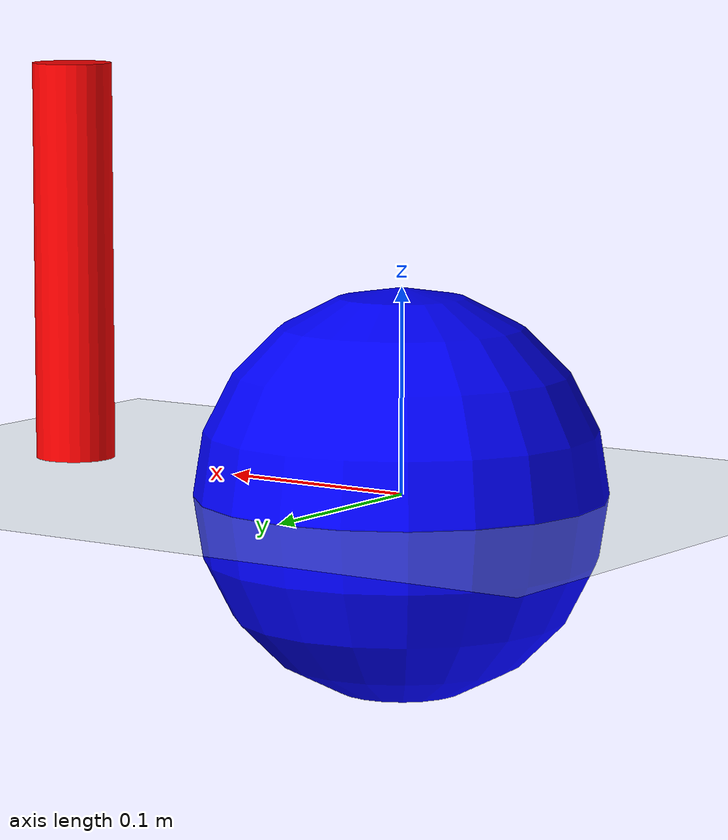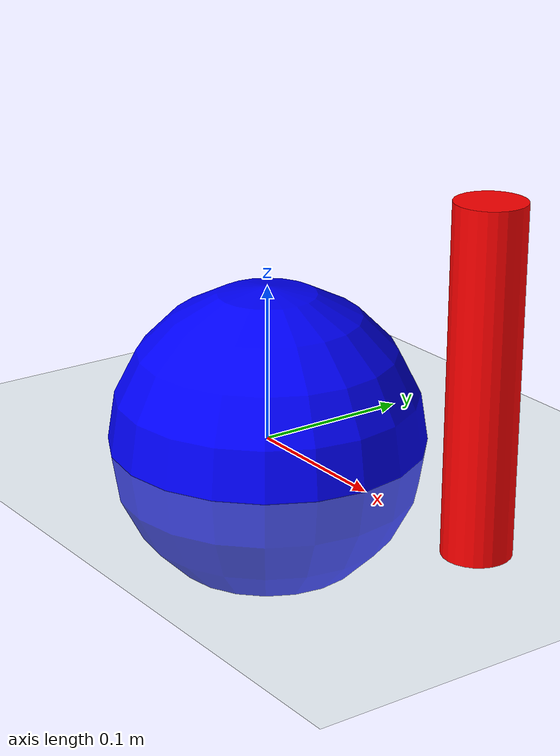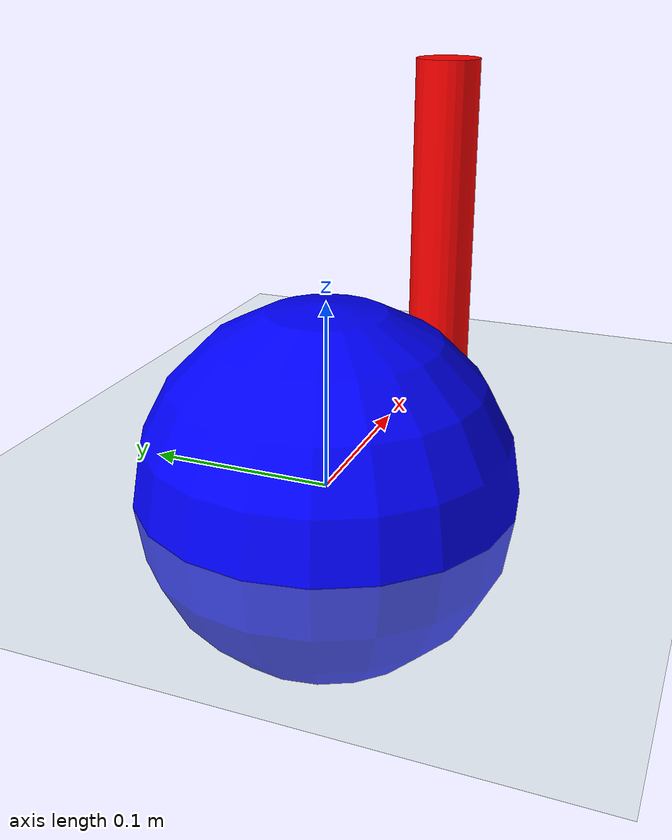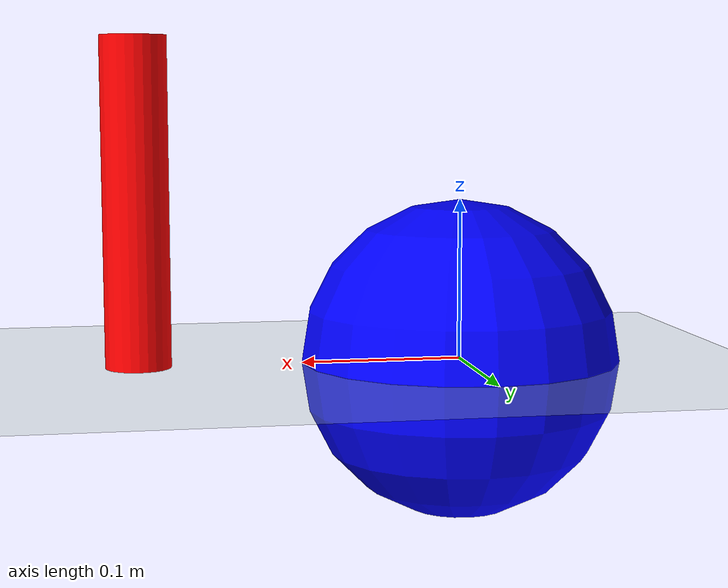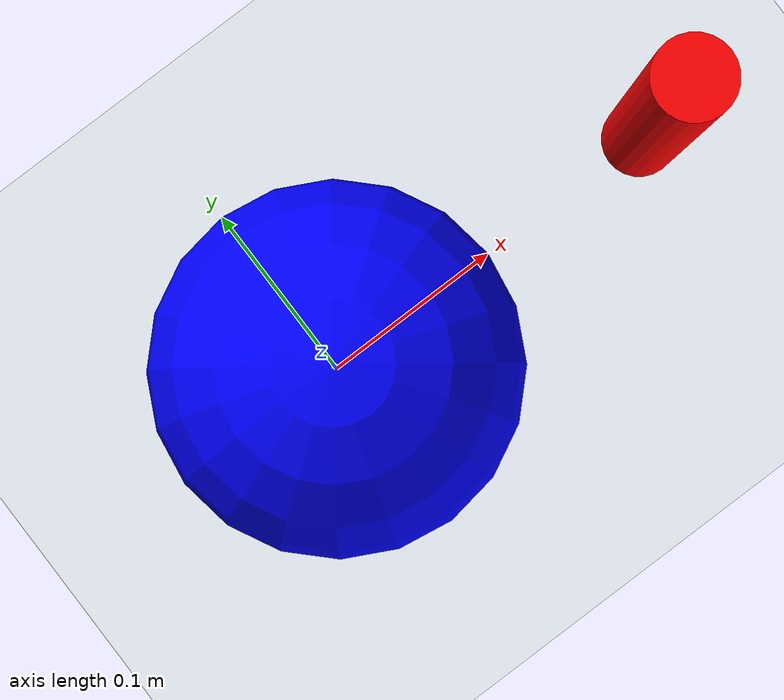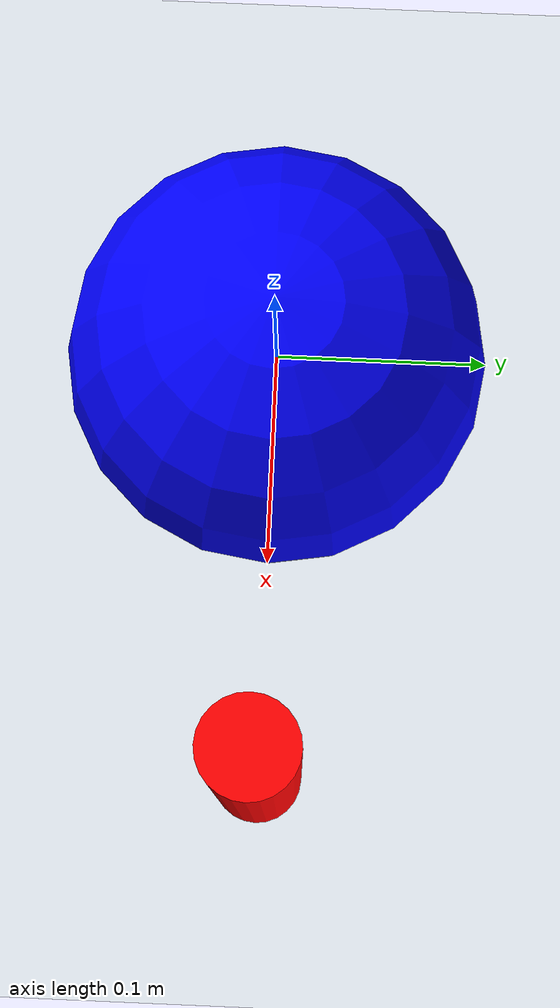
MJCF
<mujoco model="box">
  <compiler angle="radian" coordinate="local" inertiafromgeom="true" settotalmass="1"/>
  <default>
    <joint armature=".1" damping=".01" limited="false" solimplimit="0 .8 .03" solreflimit=".02 1" stiffness="1"/>
    <geom conaffinity="0" condim="3" contype="1" friction=".0 .0 .0" rgba="0.8 0.6 .4 1" solimp="0.0 0.8 0.01" solref="0.02 1"/>
    <motor ctrllimited="true" ctrlrange="-1 1"/>
  </default>
  <size nstack="300000" nuser_geom="1"/>
  <option gravity="0 0 0" timestep="0.1"/>
  <asset>
    <texture builtin="gradient" height="100" rgb1="1 1 1" rgb2="0 0 0" type="skybox" width="100"/>
    <texture builtin="flat" height="1278" mark="cross" markrgb="1 1 1" name="texgeom" random="0.01" rgb1="0.8 0.6 0.4" rgb2="0.8 0.6 0.4" type="cube" width="127"/>
    <texture builtin="checker" height="100" name="texplane" rgb1="0 0 0" rgb2="0.8 0.8 0.8" type="2d" width="100"/>
    <material name="MatPlane" reflectance="0.5" shininess="1" specular="1" texrepeat="40 40" texture="texplane"/>
    <material name="geom" texture="texgeom" texuniform="true"/>
  </asset>
  <worldbody>
    <light cutoff="100" diffuse="1 1 1" dir="-0 0 -1.3" directional="true" exponent="1" pos="0 0 1.3" specular=".1 .1 .1"/>
    <geom conaffinity="1" condim="3" material="MatPlane" name="floor" pos="0 0 0" rgba="0.8 0.9 0.8 1" size="40 40 40" type="plane"/>
    <body name="box" pos="0 0 0">
      <camera name="track" mode="trackcom" pos="0 -9 3" xyaxes="1 0 0 0 0.3 1"/>
      <geom type="sphere" size="0.1 0.1 0.1" rgba="0 0 1 1"/>
      <joint axis="1 0 0" damping="10" name="boxslideX" pos="0 0 0" range="-30 30" stiffness="1"  type="slide" />
      <joint name="boxslideZ" damping="10" type="slide" axis="0 0 1" limited="false"/>
      <!-- Dummy body for visualizing desired orientation -->
      <body name="dummy_orientation_body" pos="0.2 0 0.1">
        <joint name="boxrotateY" type="hinge" axis="0 1 0" limited="true" range="-1.56 1.56"/>
        <geom name="orientation_bar" type="cylinder" size="0.02 0.1" rgba="1 0 0 1" contype="0" conaffinity="0"/>
      </body>
    </body>
  </worldbody>
  <actuator>
    <motor gear="50" joint="boxslideX" name="box_move_x"/>
    <motor gear="5" joint="boxrotateY" name="box_rotate_y"/>
    <motor gear="50" joint="boxslideZ" name="box_move_z"/>
  </actuator>
</mujoco>
